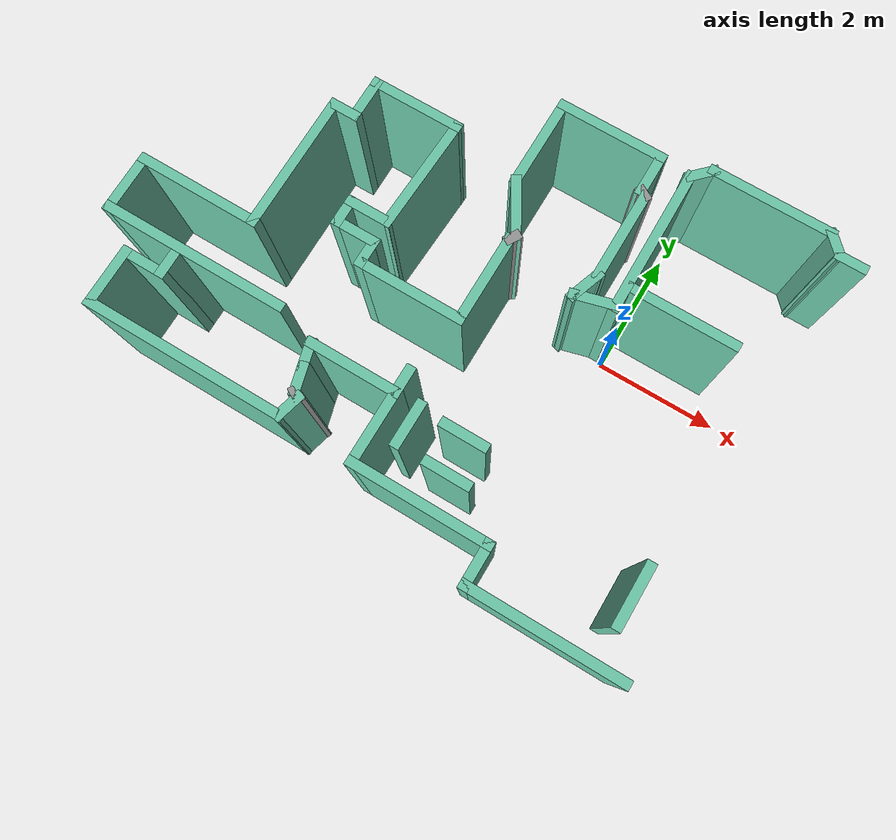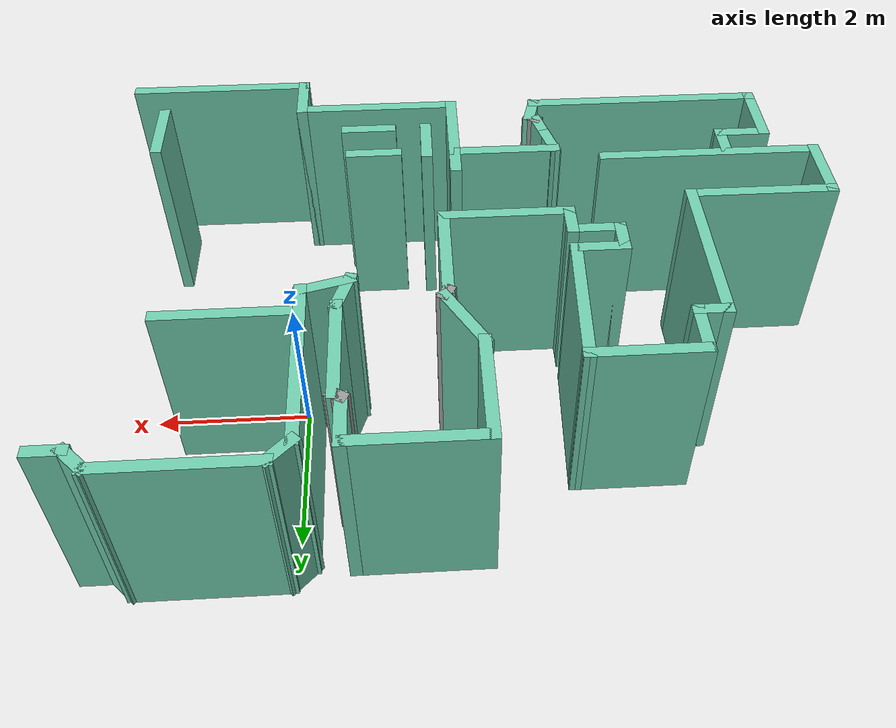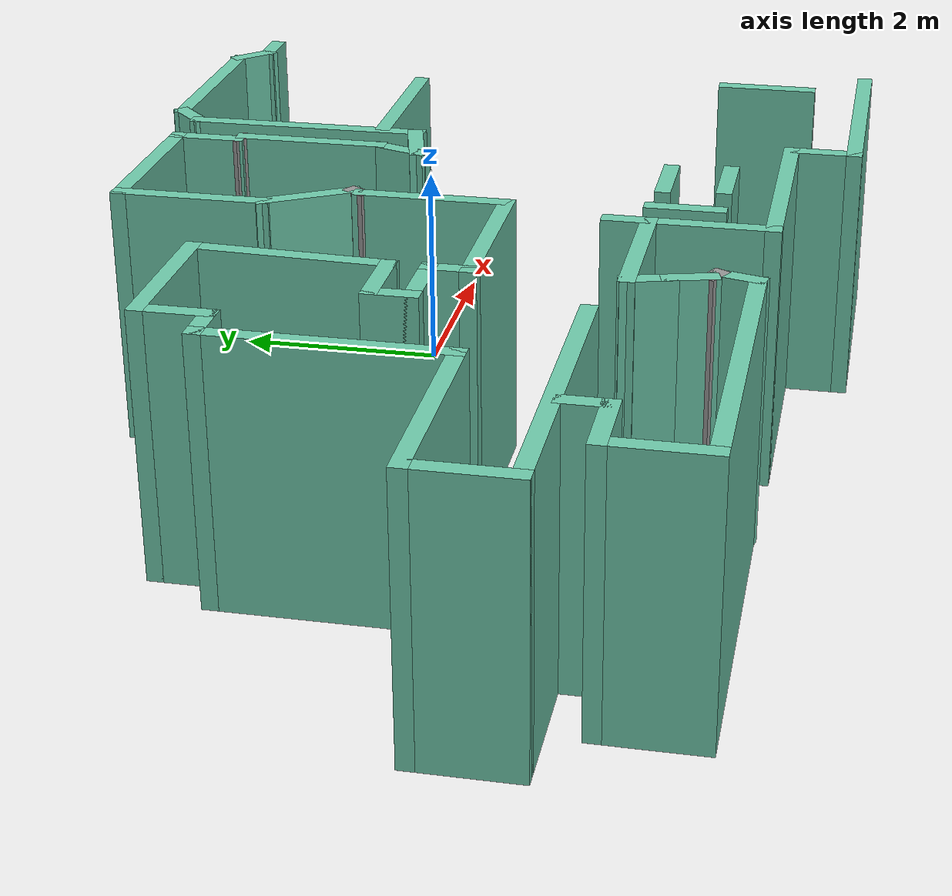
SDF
<sdf version="1.6">
 <model name="map_8">
  <pose>1.27154 -1.32624 0 0 -0 0</pose>
  <link name="Wall_0">
   <collision name="Wall_0_Collision">
    <geometry><box><size>1.5 0.15 2.5</size></box></geometry>
    <pose>0 0 1.25 0 -0 0</pose>
   </collision>
   <visual name="Wall_0_Visual">
    <pose>0 0 1.25 0 -0 0</pose>
    <geometry><box><size>1.5 0.15 2.5</size></box></geometry>
    <material>
     <script><uri>file://media/materials/scripts/gazebo.material</uri><name>Gazebo/Grey</name></script>
     <ambient>0.435294 0.796078 0.67451 1</ambient>
    </material>
    <meta><layer>0</layer></meta>
   </visual>
   <pose>-5.35674 2.63095 0 0 -0 3.14159</pose>
  </link>
  <link name="Wall_1">
   <collision name="Wall_1_Collision">
    <geometry><box><size>0.75 0.15 2.5</size></box></geometry>
    <pose>0 0 1.25 0 -0 0</pose>
   </collision>
   <visual name="Wall_1_Visual">
    <pose>0 0 1.25 0 -0 0</pose>
    <geometry><box><size>0.75 0.15 2.5</size></box></geometry>
    <material>
     <script><uri>file://media/materials/scripts/gazebo.material</uri><name>Gazebo/Grey</name></script>
     <ambient>0.435294 0.796078 0.67451 1</ambient>
    </material>
    <meta><layer>0</layer></meta>
   </visual>
   <pose>-6.03174 2.33095 0 0 -0 -1.5708</pose>
  </link>
  <link name="Wall_100">
   <collision name="Wall_100_Collision">
    <geometry><box><size>0.5 0.15 2.5</size></box></geometry>
    <pose>0 0 1.25 0 -0 0</pose>
   </collision>
   <visual name="Wall_100_Visual">
    <pose>0 0 1.25 0 -0 0</pose>
    <geometry><box><size>0.5 0.15 2.5</size></box></geometry>
    <material>
     <script><uri>file://media/materials/scripts/gazebo.material</uri><name>Gazebo/Grey</name></script>
     <ambient>0.435294 0.796078 0.67451 1</ambient>
    </material>
    <meta><layer>0</layer></meta>
   </visual>
   <pose>-4.76082 0.357873 0 0 -0 1.5708</pose>
  </link>
  <link name="Wall_101">
   <collision name="Wall_101_Collision">
    <geometry><box><size>0.75 0.15 2.5</size></box></geometry>
    <pose>0 0 1.25 0 -0 0</pose>
   </collision>
   <visual name="Wall_101_Visual">
    <pose>0 0 1.25 0 -0 0</pose>
    <geometry><box><size>0.75 0.15 2.5</size></box></geometry>
    <material>
     <script><uri>file://media/materials/scripts/gazebo.material</uri><name>Gazebo/Grey</name></script>
     <ambient>0.435294 0.796078 0.67451 1</ambient>
    </material>
    <meta><layer>0</layer></meta>
   </visual>
   <pose>-5.06081 0.532873 0 0 -0 3.14159</pose>
  </link>
  <link name="Wall_102">
   <collision name="Wall_102_Collision">
    <geometry><box><size>0.5 0.15 2.5</size></box></geometry>
    <pose>0 0 1.25 0 -0 0</pose>
   </collision>
   <visual name="Wall_102_Visual">
    <pose>0 0 1.25 0 -0 0</pose>
    <geometry><box><size>0.5 0.15 2.5</size></box></geometry>
    <material>
     <script><uri>file://media/materials/scripts/gazebo.material</uri><name>Gazebo/Grey</name></script>
     <ambient>0.435294 0.796078 0.67451 1</ambient>
    </material>
    <meta><layer>0</layer></meta>
   </visual>
   <pose>-5.36081 0.707873 0 0 -0 1.5708</pose>
  </link>
  <link name="Wall_103">
   <collision name="Wall_103_Collision">
    <geometry><box><size>0.75 0.15 2.5</size></box></geometry>
    <pose>0 0 1.25 0 -0 0</pose>
   </collision>
   <visual name="Wall_103_Visual">
    <pose>0 0 1.25 0 -0 0</pose>
    <geometry><box><size>0.75 0.15 2.5</size></box></geometry>
    <material>
     <script><uri>file://media/materials/scripts/gazebo.material</uri><name>Gazebo/Grey</name></script>
     <ambient>0.435294 0.796078 0.67451 1</ambient>
    </material>
    <meta><layer>0</layer></meta>
   </visual>
   <pose>-5.06081 0.882873 0 0 -0 0</pose>
  </link>
  <link name="Wall_104">
   <collision name="Wall_104_Collision">
    <geometry><box><size>1.89986 0.15 2.5</size></box></geometry>
    <pose>0 0 1.25 0 -0 0</pose>
   </collision>
   <visual name="Wall_104_Visual">
    <pose>0 0 1.25 0 -0 0</pose>
    <geometry><box><size>1.89986 0.15 2.5</size></box></geometry>
    <material>
     <script><uri>file://media/materials/scripts/gazebo.material</uri><name>Gazebo/Grey</name></script>
     <ambient>0.435294 0.796078 0.67451 1</ambient>
    </material>
    <meta><layer>0</layer></meta>
   </visual>
   <pose>-4.72128 1.75691 0 0 -0 1.52559</pose>
  </link>
  <link name="Wall_11">
   <collision name="Wall_11_Collision">
    <geometry><box><size>0.75 0.15 2.5</size></box></geometry>
    <pose>0 0 1.25 0 -0 0</pose>
   </collision>
   <visual name="Wall_11_Visual">
    <pose>0 0 1.25 0 -0 0</pose>
    <geometry><box><size>0.75 0.15 2.5</size></box></geometry>
    <material>
     <script><uri>file://media/materials/scripts/gazebo.material</uri><name>Gazebo/Grey</name></script>
     <ambient>0.435294 0.796078 0.67451 1</ambient>
    </material>
    <meta><layer>0</layer></meta>
   </visual>
   <pose>-7.34107 -1.35055 0 0 -0 3.14159</pose>
  </link>
  <link name="Wall_113">
   <collision name="Wall_113_Collision">
    <geometry><box><size>1.75 0.15 2.5</size></box></geometry>
    <pose>0 0 1.25 0 -0 0</pose>
   </collision>
   <visual name="Wall_113_Visual">
    <pose>0 0 1.25 0 -0 0</pose>
    <geometry><box><size>1.75 0.15 2.5</size></box></geometry>
    <material>
     <script><uri>file://media/materials/scripts/gazebo.material</uri><name>Gazebo/Grey</name></script>
     <ambient>0.435294 0.796078 0.67451 1</ambient>
    </material>
    <meta><layer>0</layer></meta>
   </visual>
   <pose>-0.554925 1.77512 0 0 -0 3.14159</pose>
  </link>
  <link name="Wall_12">
   <collision name="Wall_12_Collision">
    <geometry><box><size>1 0.15 2.5</size></box></geometry>
    <pose>0 0 1.25 0 -0 0</pose>
   </collision>
   <visual name="Wall_12_Visual">
    <pose>0 0 1.25 0 -0 0</pose>
    <geometry><box><size>1 0.15 2.5</size></box></geometry>
    <material>
     <script><uri>file://media/materials/scripts/gazebo.material</uri><name>Gazebo/Grey</name></script>
     <ambient>0.435294 0.796078 0.67451 1</ambient>
    </material>
    <meta><layer>0</layer></meta>
   </visual>
   <pose>-7.64107 -1.77555 0 0 -0 -1.5708</pose>
  </link>
  <link name="Wall_125">
   <collision name="Wall_125_Collision">
    <geometry><box><size>0.75 0.15 2.5</size></box></geometry>
    <pose>0 0 1.25 0 -0 0</pose>
   </collision>
   <visual name="Wall_125_Visual">
    <pose>0 0 1.25 0 -0 0</pose>
    <geometry><box><size>0.75 0.15 2.5</size></box></geometry>
    <material>
     <script><uri>file://media/materials/scripts/gazebo.material</uri><name>Gazebo/Grey</name></script>
     <ambient>0.435294 0.796078 0.67451 1</ambient>
    </material>
    <meta><layer>0</layer></meta>
   </visual>
   <pose>-2.99321 -1.41621 0 0 -0 -1.5708</pose>
  </link>
  <link name="Wall_128">
   <collision name="Wall_128_Collision">
    <geometry><box><size>0.75 0.15 2.5</size></box></geometry>
    <pose>0 0 1.25 0 -0 0</pose>
   </collision>
   <visual name="Wall_128_Visual">
    <pose>0 0 1.25 0 -0 0</pose>
    <geometry><box><size>0.75 0.15 2.5</size></box></geometry>
    <material>
     <script><uri>file://media/materials/scripts/gazebo.material</uri><name>Gazebo/Grey</name></script>
     <ambient>0.435294 0.796078 0.67451 1</ambient>
    </material>
    <meta><layer>0</layer></meta>
   </visual>
   <pose>-2.27686 -1.16247 0 0 -0 0</pose>
  </link>
  <link name="Wall_13">
   <collision name="Wall_13_Collision">
    <geometry><box><size>3.25 0.15 2.5</size></box></geometry>
    <pose>0 0 1.25 0 -0 0</pose>
   </collision>
   <visual name="Wall_13_Visual">
    <pose>0 0 1.25 0 -0 0</pose>
    <geometry><box><size>3.25 0.15 2.5</size></box></geometry>
    <material>
     <script><uri>file://media/materials/scripts/gazebo.material</uri><name>Gazebo/Grey</name></script>
     <ambient>0.435294 0.796078 0.67451 1</ambient>
    </material>
    <meta><layer>0</layer></meta>
   </visual>
   <pose>-6.09107 -2.20056 0 0 -0 0</pose>
  </link>
  <link name="Wall_130">
   <collision name="Wall_130_Collision">
    <geometry><box><size>0.75 0.15 2.5</size></box></geometry>
    <pose>0 0 1.25 0 -0 0</pose>
   </collision>
   <visual name="Wall_130_Visual">
    <pose>0 0 1.25 0 -0 0</pose>
    <geometry><box><size>0.75 0.15 2.5</size></box></geometry>
    <material>
     <script><uri>file://media/materials/scripts/gazebo.material</uri><name>Gazebo/Grey</name></script>
     <ambient>0.435294 0.796078 0.67451 1</ambient>
    </material>
    <meta><layer>0</layer></meta>
   </visual>
   <pose>-2.20747 -1.7176 0 0 -0 0</pose>
  </link>
  <link name="Wall_132">
   <collision name="Wall_132_Collision">
    <geometry><box><size>1 0.15 2.5</size></box></geometry>
    <pose>0 0 1.25 0 -0 0</pose>
   </collision>
   <visual name="Wall_132_Visual">
    <pose>0 0 1.25 0 -0 0</pose>
    <geometry><box><size>1 0.15 2.5</size></box></geometry>
    <material>
     <script><uri>file://media/materials/scripts/gazebo.material</uri><name>Gazebo/Grey</name></script>
     <ambient>0.435294 0.796078 0.67451 1</ambient>
    </material>
    <meta><layer>0</layer></meta>
   </visual>
   <pose>0.661426 -1.84191 0 0 -0 -1.5708</pose>
  </link>
  <link name="Wall_14">
   <collision name="Wall_14_Collision">
    <geometry><box><size>0.5 0.15 2.5</size></box></geometry>
    <pose>0 0 1.25 0 -0 0</pose>
   </collision>
   <visual name="Wall_14_Visual">
    <pose>0 0 1.25 0 -0 0</pose>
    <geometry><box><size>0.5 0.15 2.5</size></box></geometry>
    <material>
     <script><uri>file://media/materials/scripts/gazebo.material</uri><name>Gazebo/Grey</name></script>
     <ambient>0.435294 0.796078 0.67451 1</ambient>
    </material>
    <meta><layer>0</layer></meta>
   </visual>
   <pose>-4.49577 -2.03152 0 0 -0 1.309</pose>
  </link>
  <link name="Wall_15">
   <collision name="Wall_15_Collision">
    <geometry><box><size>0.25 0.15 2.5</size></box></geometry>
    <pose>0 0 1.25 0 -0 0</pose>
   </collision>
   <visual name="Wall_15_Visual">
    <pose>0 0 1.25 0 -0 0</pose>
    <geometry><box><size>0.25 0.15 2.5</size></box></geometry>
    <material>
     <script><uri>file://media/materials/scripts/gazebo.material</uri><name>Gazebo/Grey</name></script>
     <ambient>1 1 1 1</ambient>
    </material>
    <meta><layer>0</layer></meta>
   </visual>
   <pose>-4.49378 -1.83748 0 0 -0 2.61799</pose>
  </link>
  <link name="Wall_16">
   <collision name="Wall_16_Collision">
    <geometry><box><size>0.5 0.15 2.5</size></box></geometry>
    <pose>0 0 1.25 0 -0 0</pose>
   </collision>
   <visual name="Wall_16_Visual">
    <pose>0 0 1.25 0 -0 0</pose>
    <geometry><box><size>0.5 0.15 2.5</size></box></geometry>
    <material>
     <script><uri>file://media/materials/scripts/gazebo.material</uri><name>Gazebo/Grey</name></script>
     <ambient>0.435294 0.796078 0.67451 1</ambient>
    </material>
    <meta><layer>0</layer></meta>
   </visual>
   <pose>-4.58237 -1.64344 0 0 -0 1.8326</pose>
  </link>
  <link name="Wall_17">
   <collision name="Wall_17_Collision">
    <geometry><box><size>0.5 0.15 2.5</size></box></geometry>
    <pose>0 0 1.25 0 -0 0</pose>
   </collision>
   <visual name="Wall_17_Visual">
    <pose>0 0 1.25 0 -0 0</pose>
    <geometry><box><size>0.5 0.15 2.5</size></box></geometry>
    <material>
     <script><uri>file://media/materials/scripts/gazebo.material</uri><name>Gazebo/Grey</name></script>
     <ambient>0.435294 0.796078 0.67451 1</ambient>
    </material>
    <meta><layer>0</layer></meta>
   </visual>
   <pose>-4.67296 -1.30537 0 0 -0 1.8326</pose>
  </link>
  <link name="Wall_2">
   <collision name="Wall_2_Collision">
    <geometry><box><size>0.5 0.15 2.5</size></box></geometry>
    <pose>0 0 1.25 0 -0 0</pose>
   </collision>
   <visual name="Wall_2_Visual">
    <pose>0 0 1.25 0 -0 0</pose>
    <geometry><box><size>0.5 0.15 2.5</size></box></geometry>
    <material>
     <script><uri>file://media/materials/scripts/gazebo.material</uri><name>Gazebo/Grey</name></script>
     <ambient>0.435294 0.796078 0.67451 1</ambient>
    </material>
    <meta><layer>0</layer></meta>
   </visual>
   <pose>-6.20674 2.03095 0 0 -0 3.14159</pose>
  </link>
  <link name="Wall_20">
   <collision name="Wall_20_Collision">
    <geometry><box><size>1.5 0.15 2.5</size></box></geometry>
    <pose>0 0 1.25 0 -0 0</pose>
   </collision>
   <visual name="Wall_20_Visual">
    <pose>0 0 1.25 0 -0 0</pose>
    <geometry><box><size>1.5 0.15 2.5</size></box></geometry>
    <material>
     <script><uri>file://media/materials/scripts/gazebo.material</uri><name>Gazebo/Grey</name></script>
     <ambient>0.435294 0.796078 0.67451 1</ambient>
    </material>
    <meta><layer>0</layer></meta>
   </visual>
   <pose>-4.04326 -1.13633 0 0 -0 0</pose>
  </link>
  <link name="Wall_21">
   <collision name="Wall_21_Collision">
    <geometry><box><size>0.5 0.15 2.5</size></box></geometry>
    <pose>0 0 1.25 0 -0 0</pose>
   </collision>
   <visual name="Wall_21_Visual">
    <pose>0 0 1.25 0 -0 0</pose>
    <geometry><box><size>0.5 0.15 2.5</size></box></geometry>
    <material>
     <script><uri>file://media/materials/scripts/gazebo.material</uri><name>Gazebo/Grey</name></script>
     <ambient>0.435294 0.796078 0.67451 1</ambient>
    </material>
    <meta><layer>0</layer></meta>
   </visual>
   <pose>-3.36825 -0.961333 0 0 -0 1.5708</pose>
  </link>
  <link name="Wall_25">
   <collision name="Wall_25_Collision">
    <geometry><box><size>1.25 0.15 2.5</size></box></geometry>
    <pose>0 0 1.25 0 -0 0</pose>
   </collision>
   <visual name="Wall_25_Visual">
    <pose>0 0 1.25 0 -0 0</pose>
    <geometry><box><size>1.25 0.15 2.5</size></box></geometry>
    <material>
     <script><uri>file://media/materials/scripts/gazebo.material</uri><name>Gazebo/Grey</name></script>
     <ambient>0.435294 0.796078 0.67451 1</ambient>
    </material>
    <meta><layer>0</layer></meta>
   </visual>
   <pose>-3.36825 -1.68633 0 0 -0 -1.5708</pose>
  </link>
  <link name="Wall_26">
   <collision name="Wall_26_Collision">
    <geometry><box><size>2.25 0.15 2.5</size></box></geometry>
    <pose>0 0 1.25 0 -0 0</pose>
   </collision>
   <visual name="Wall_26_Visual">
    <pose>0 0 1.25 0 -0 0</pose>
    <geometry><box><size>2.25 0.15 2.5</size></box></geometry>
    <material>
     <script><uri>file://media/materials/scripts/gazebo.material</uri><name>Gazebo/Grey</name></script>
     <ambient>0.435294 0.796078 0.67451 1</ambient>
    </material>
    <meta><layer>0</layer></meta>
   </visual>
   <pose>-2.31826 -2.23633 0 0 -0 0</pose>
  </link>
  <link name="Wall_27">
   <collision name="Wall_27_Collision">
    <geometry><box><size>0.75 0.15 2.5</size></box></geometry>
    <pose>0 0 1.25 0 -0 0</pose>
   </collision>
   <visual name="Wall_27_Visual">
    <pose>0 0 1.25 0 -0 0</pose>
    <geometry><box><size>0.75 0.15 2.5</size></box></geometry>
    <material>
     <script><uri>file://media/materials/scripts/gazebo.material</uri><name>Gazebo/Grey</name></script>
     <ambient>0.435294 0.796078 0.67451 1</ambient>
    </material>
    <meta><layer>0</layer></meta>
   </visual>
   <pose>-1.26825 -2.53633 0 0 -0 -1.5708</pose>
  </link>
  <link name="Wall_3">
   <collision name="Wall_3_Collision">
    <geometry><box><size>2.25 0.15 2.5</size></box></geometry>
    <pose>0 0 1.25 0 -0 0</pose>
   </collision>
   <visual name="Wall_3_Visual">
    <pose>0 0 1.25 0 -0 0</pose>
    <geometry><box><size>2.25 0.15 2.5</size></box></geometry>
    <material>
     <script><uri>file://media/materials/scripts/gazebo.material</uri><name>Gazebo/Grey</name></script>
     <ambient>0.435294 0.796078 0.67451 1</ambient>
    </material>
    <meta><layer>0</layer></meta>
   </visual>
   <pose>-6.38174 0.980951 0 0 -0 -1.5708</pose>
  </link>
  <link name="Wall_30">
   <collision name="Wall_30_Collision">
    <geometry><box><size>2.5 0.15 2.5</size></box></geometry>
    <pose>0 0 1.25 0 -0 0</pose>
   </collision>
   <visual name="Wall_30_Visual">
    <pose>0 0 1.25 0 -0 0</pose>
    <geometry><box><size>2.5 0.15 2.5</size></box></geometry>
    <material>
     <script><uri>file://media/materials/scripts/gazebo.material</uri><name>Gazebo/Grey</name></script>
     <ambient>0.435294 0.796078 0.67451 1</ambient>
    </material>
    <meta><layer>0</layer></meta>
   </visual>
   <pose>-0.093255 -2.83633 0 0 -0 0</pose>
  </link>
  <link name="Wall_4">
   <collision name="Wall_4_Collision">
    <geometry><box><size>2 0.15 2.5</size></box></geometry>
    <pose>0 0 1.25 0 -0 0</pose>
   </collision>
   <visual name="Wall_4_Visual">
    <pose>0 0 1.25 0 -0 0</pose>
    <geometry><box><size>2 0.15 2.5</size></box></geometry>
    <material>
     <script><uri>file://media/materials/scripts/gazebo.material</uri><name>Gazebo/Grey</name></script>
     <ambient>0.435294 0.796078 0.67451 1</ambient>
    </material>
    <meta><layer>0</layer></meta>
   </visual>
   <pose>-7.30674 -0.069049 0 0 -0 3.14159</pose>
  </link>
  <link name="Wall_5">
   <collision name="Wall_5_Collision">
    <geometry><box><size>1 0.15 2.5</size></box></geometry>
    <pose>0 0 1.25 0 -0 0</pose>
   </collision>
   <visual name="Wall_5_Visual">
    <pose>0 0 1.25 0 -0 0</pose>
    <geometry><box><size>1 0.15 2.5</size></box></geometry>
    <material>
     <script><uri>file://media/materials/scripts/gazebo.material</uri><name>Gazebo/Grey</name></script>
     <ambient>0.435294 0.796078 0.67451 1</ambient>
    </material>
    <meta><layer>0</layer></meta>
   </visual>
   <pose>-8.23174 -0.494049 0 0 -0 -1.5708</pose>
  </link>
  <link name="Wall_6">
   <collision name="Wall_6_Collision">
    <geometry><box><size>3 0.15 2.5</size></box></geometry>
    <pose>0 0 1.25 0 -0 0</pose>
   </collision>
   <visual name="Wall_6_Visual">
    <pose>0 0 1.25 0 -0 0</pose>
    <geometry><box><size>3 0.15 2.5</size></box></geometry>
    <material>
     <script><uri>file://media/materials/scripts/gazebo.material</uri><name>Gazebo/Grey</name></script>
     <ambient>0.435294 0.796078 0.67451 1</ambient>
    </material>
    <meta><layer>0</layer></meta>
   </visual>
   <pose>-6.80674 -0.919049 0 0 -0 0</pose>
  </link>
  <link name="Wall_8">
   <collision name="Wall_8_Collision">
    <geometry><box><size>0.5 0.15 2.5</size></box></geometry>
    <pose>0 0 1.25 0 -0 0</pose>
   </collision>
   <visual name="Wall_8_Visual">
    <pose>0 0 1.25 0 -0 0</pose>
    <geometry><box><size>0.5 0.15 2.5</size></box></geometry>
    <material>
     <script><uri>file://media/materials/scripts/gazebo.material</uri><name>Gazebo/Grey</name></script>
     <ambient>0.435294 0.796078 0.67451 1</ambient>
    </material>
    <meta><layer>0</layer></meta>
   </visual>
   <pose>-7.04107 -1.17555 0 0 -0 -1.5708</pose>
  </link>
  <link name="Wall_80">
   <collision name="Wall_80_Collision">
    <geometry><box><size>0.5 0.15 2.5</size></box></geometry>
    <pose>0 0 1.25 0 -0 0</pose>
   </collision>
   <visual name="Wall_80_Visual">
    <pose>0 0 1.25 0 -0 0</pose>
    <geometry><box><size>0.5 0.15 2.5</size></box></geometry>
    <material>
     <script><uri>file://media/materials/scripts/gazebo.material</uri><name>Gazebo/Grey</name></script>
     <ambient>0.435294 0.796078 0.67451 1</ambient>
    </material>
    <meta><layer>0</layer></meta>
   </visual>
   <pose>1.07532 3.65778 0 0 -0 3.14159</pose>
  </link>
  <link name="Wall_81">
   <collision name="Wall_81_Collision">
    <geometry><box><size>0.5 0.15 2.5</size></box></geometry>
    <pose>0 0 1.25 0 -0 0</pose>
   </collision>
   <visual name="Wall_81_Visual">
    <pose>0 0 1.25 0 -0 0</pose>
    <geometry><box><size>0.5 0.15 2.5</size></box></geometry>
    <material>
     <script><uri>file://media/materials/scripts/gazebo.material</uri><name>Gazebo/Grey</name></script>
     <ambient>0.435294 0.796078 0.67451 1</ambient>
    </material>
    <meta><layer>0</layer></meta>
   </visual>
   <pose>0.776574 3.78152 0 0 -0 2.35619</pose>
  </link>
  <link name="Wall_82">
   <collision name="Wall_82_Collision">
    <geometry><box><size>2 0.15 2.5</size></box></geometry>
    <pose>0 0 1.25 0 -0 0</pose>
   </collision>
   <visual name="Wall_82_Visual">
    <pose>0 0 1.25 0 -0 0</pose>
    <geometry><box><size>2 0.15 2.5</size></box></geometry>
    <material>
     <script><uri>file://media/materials/scripts/gazebo.material</uri><name>Gazebo/Grey</name></script>
     <ambient>0.435294 0.796078 0.67451 1</ambient>
    </material>
    <meta><layer>0</layer></meta>
   </visual>
   <pose>-0.272169 3.90527 0 0 -0 3.14159</pose>
  </link>
  <link name="Wall_83">
   <collision name="Wall_83_Collision">
    <geometry><box><size>0.5 0.15 2.5</size></box></geometry>
    <pose>0 0 1.25 0 -0 0</pose>
   </collision>
   <visual name="Wall_83_Visual">
    <pose>0 0 1.25 0 -0 0</pose>
    <geometry><box><size>0.5 0.15 2.5</size></box></geometry>
    <material>
     <script><uri>file://media/materials/scripts/gazebo.material</uri><name>Gazebo/Grey</name></script>
     <ambient>0.435294 0.796078 0.67451 1</ambient>
    </material>
    <meta><layer>0</layer></meta>
   </visual>
   <pose>-1.32091 3.78152 0 0 -0 -2.35619</pose>
  </link>
  <link name="Wall_84">
   <collision name="Wall_84_Collision">
    <geometry><box><size>2.3889 0.15 2.5</size></box></geometry>
    <pose>0 0 1.25 0 -0 0</pose>
   </collision>
   <visual name="Wall_84_Visual">
    <pose>0 0 1.25 0 -0 0</pose>
    <geometry><box><size>2.3889 0.15 2.5</size></box></geometry>
    <material>
     <script><uri>file://media/materials/scripts/gazebo.material</uri><name>Gazebo/Grey</name></script>
     <ambient>0.435294 0.796078 0.67451 1</ambient>
    </material>
    <meta><layer>0</layer></meta>
   </visual>
   <pose>-1.43309 2.53839 0 0 -0 -1.56046</pose>
  </link>
  <link name="Wall_85">
   <collision name="Wall_85_Collision">
    <geometry><box><size>0.75 0.15 2.5</size></box></geometry>
    <pose>0 0 1.25 0 -0 0</pose>
   </collision>
   <visual name="Wall_85_Visual">
    <pose>0 0 1.25 0 -0 0</pose>
    <geometry><box><size>0.75 0.15 2.5</size></box></geometry>
    <material>
     <script><uri>file://media/materials/scripts/gazebo.material</uri><name>Gazebo/Grey</name></script>
     <ambient>0.435294 0.796078 0.67451 1</ambient>
    </material>
    <meta><layer>0</layer></meta>
   </visual>
   <pose>-1.7113 1.36448 0 0 -0 -2.87979</pose>
  </link>
  <link name="Wall_86">
   <collision name="Wall_86_Collision">
    <geometry><box><size>0.617262 0.15 2.5</size></box></geometry>
    <pose>0 0 1.25 0 -0 0</pose>
   </collision>
   <visual name="Wall_86_Visual">
    <pose>0 0 1.25 0 -0 0</pose>
    <geometry><box><size>0.617262 0.15 2.5</size></box></geometry>
    <material>
     <script><uri>file://media/materials/scripts/gazebo.material</uri><name>Gazebo/Grey</name></script>
     <ambient>0.435294 0.796078 0.67451 1</ambient>
    </material>
    <meta><layer>0</layer></meta>
   </visual>
   <pose>-1.92515 1.48465 0 0 -0 1.23976</pose>
  </link>
  <link name="Wall_87">
   <collision name="Wall_87_Collision">
    <geometry><box><size>1.5 0.15 2.5</size></box></geometry>
    <pose>0 0 1.25 0 -0 0</pose>
   </collision>
   <visual name="Wall_87_Visual">
    <pose>0 0 1.25 0 -0 0</pose>
    <geometry><box><size>1.5 0.15 2.5</size></box></geometry>
    <material>
     <script><uri>file://media/materials/scripts/gazebo.material</uri><name>Gazebo/Grey</name></script>
     <ambient>0.435294 0.796078 0.67451 1</ambient>
    </material>
    <meta><layer>0</layer></meta>
   </visual>
   <pose>-1.84921 2.3806 0 0 -0 1.5708</pose>
  </link>
  <link name="Wall_88">
   <collision name="Wall_88_Collision">
    <geometry><box><size>0.25 0.15 2.5</size></box></geometry>
    <pose>0 0 1.25 0 -0 0</pose>
   </collision>
   <visual name="Wall_88_Visual">
    <pose>0 0 1.25 0 -0 0</pose>
    <geometry><box><size>0.25 0.15 2.5</size></box></geometry>
    <material>
     <script><uri>file://media/materials/scripts/gazebo.material</uri><name>Gazebo/Grey</name></script>
     <ambient>1 1 1 1</ambient>
    </material>
    <meta><layer>0</layer></meta>
   </visual>
   <pose>-1.89251 3.0806 0 0 -0 2.61799</pose>
  </link>
  <link name="Wall_89">
   <collision name="Wall_89_Collision">
    <geometry><box><size>0.75 0.15 2.5</size></box></geometry>
    <pose>0 0 1.25 0 -0 0</pose>
   </collision>
   <visual name="Wall_89_Visual">
    <pose>0 0 1.25 0 -0 0</pose>
    <geometry><box><size>0.75 0.15 2.5</size></box></geometry>
    <material>
     <script><uri>file://media/materials/scripts/gazebo.material</uri><name>Gazebo/Grey</name></script>
     <ambient>0.435294 0.796078 0.67451 1</ambient>
    </material>
    <meta><layer>0</layer></meta>
   </visual>
   <pose>-1.93582 3.4056 0 0 -0 1.5708</pose>
  </link>
  <link name="Wall_92">
   <collision name="Wall_92_Collision">
    <geometry><box><size>1.75 0.15 2.5</size></box></geometry>
    <pose>0 0 1.25 0 -0 0</pose>
   </collision>
   <visual name="Wall_92_Visual">
    <pose>0 0 1.25 0 -0 0</pose>
    <geometry><box><size>1.75 0.15 2.5</size></box></geometry>
    <material>
     <script><uri>file://media/materials/scripts/gazebo.material</uri><name>Gazebo/Grey</name></script>
     <ambient>0.435294 0.796078 0.67451 1</ambient>
    </material>
    <meta><layer>0</layer></meta>
   </visual>
   <pose>-2.73582 3.7056 0 0 -0 3.14159</pose>
  </link>
  <link name="Wall_93">
   <collision name="Wall_93_Collision">
    <geometry><box><size>1.5 0.15 2.5</size></box></geometry>
    <pose>0 0 1.25 0 -0 0</pose>
   </collision>
   <visual name="Wall_93_Visual">
    <pose>0 0 1.25 0 -0 0</pose>
    <geometry><box><size>1.5 0.15 2.5</size></box></geometry>
    <material>
     <script><uri>file://media/materials/scripts/gazebo.material</uri><name>Gazebo/Grey</name></script>
     <ambient>0.435294 0.796078 0.67451 1</ambient>
    </material>
    <meta><layer>0</layer></meta>
   </visual>
   <pose>-3.53581 3.0306 0 0 -0 -1.5708</pose>
  </link>
  <link name="Wall_96">
   <collision name="Wall_96_Collision">
    <geometry><box><size>1 0.15 2.5</size></box></geometry>
    <pose>0 0 1.25 0 -0 0</pose>
   </collision>
   <visual name="Wall_96_Visual">
    <pose>0 0 1.25 0 -0 0</pose>
    <geometry><box><size>1 0.15 2.5</size></box></geometry>
    <material>
     <script><uri>file://media/materials/scripts/gazebo.material</uri><name>Gazebo/Grey</name></script>
     <ambient>0.435294 0.796078 0.67451 1</ambient>
    </material>
    <meta><layer>0</layer></meta>
   </visual>
   <pose>-3.32332 1.98754 0 0 -0 -1.0472</pose>
  </link>
  <link name="Wall_97">
   <collision name="Wall_97_Collision">
    <geometry><box><size>0.25 0.15 2.5</size></box></geometry>
    <pose>0 0 1.25 0 -0 0</pose>
   </collision>
   <visual name="Wall_97_Visual">
    <pose>0 0 1.25 0 -0 0</pose>
    <geometry><box><size>0.25 0.15 2.5</size></box></geometry>
    <material>
     <script><uri>file://media/materials/scripts/gazebo.material</uri><name>Gazebo/Grey</name></script>
     <ambient>1 1 1 1</ambient>
    </material>
    <meta><layer>0</layer></meta>
   </visual>
   <pose>-3.13582 1.57617 0 0 -0 -2.0944</pose>
  </link>
  <link name="Wall_98">
   <collision name="Wall_98_Collision">
    <geometry><box><size>1.5 0.15 2.5</size></box></geometry>
    <pose>0 0 1.25 0 -0 0</pose>
   </collision>
   <visual name="Wall_98_Visual">
    <pose>0 0 1.25 0 -0 0</pose>
    <geometry><box><size>1.5 0.15 2.5</size></box></geometry>
    <material>
     <script><uri>file://media/materials/scripts/gazebo.material</uri><name>Gazebo/Grey</name></script>
     <ambient>0.435294 0.796078 0.67451 1</ambient>
    </material>
    <meta><layer>0</layer></meta>
   </visual>
   <pose>-3.16081 0.857873 0 0 -0 -1.5708</pose>
  </link>
  <link name="Wall_99">
   <collision name="Wall_99_Collision">
    <geometry><box><size>1.75 0.15 2.5</size></box></geometry>
    <pose>0 0 1.25 0 -0 0</pose>
   </collision>
   <visual name="Wall_99_Visual">
    <pose>0 0 1.25 0 -0 0</pose>
    <geometry><box><size>1.75 0.15 2.5</size></box></geometry>
    <material>
     <script><uri>file://media/materials/scripts/gazebo.material</uri><name>Gazebo/Grey</name></script>
     <ambient>0.435294 0.796078 0.67451 1</ambient>
    </material>
    <meta><layer>0</layer></meta>
   </visual>
   <pose>-3.96082 0.182873 0 0 -0 3.14159</pose>
  </link>
  <static>1</static>
 </model>
</sdf>
